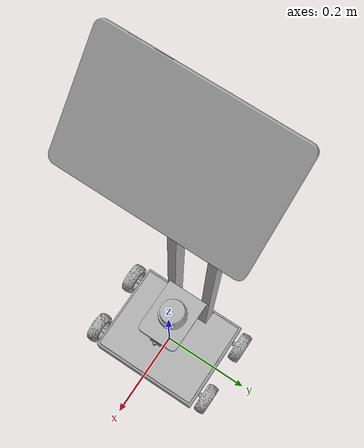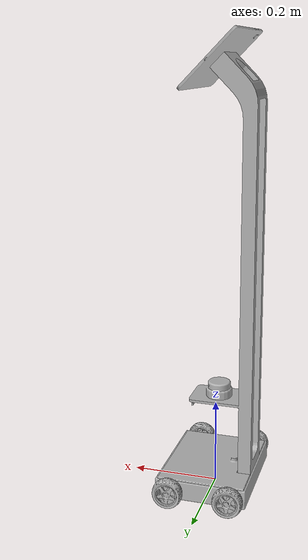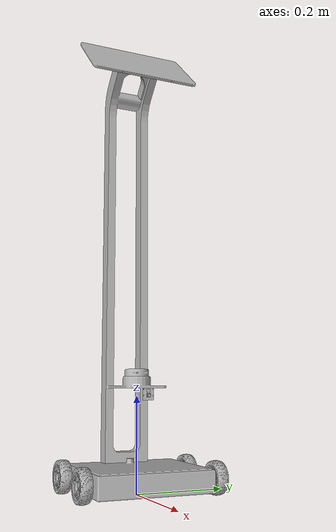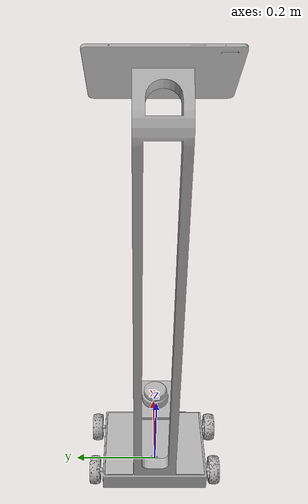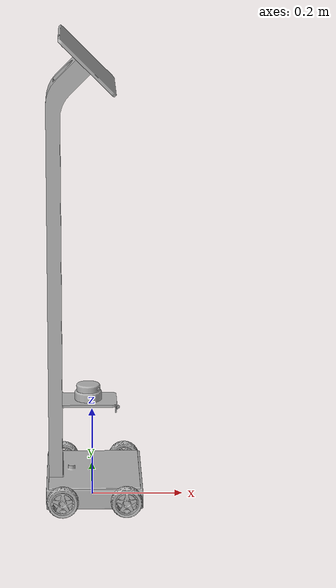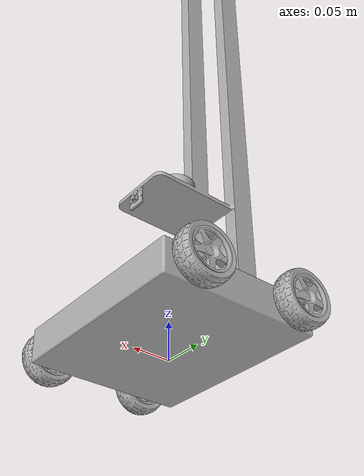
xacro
<?xml version="1.0" ?>
<robot name="guide_bot" xmlns:xacro="http://www.ros.org/wiki/xacro">

<xacro:include filename="$(find guide_bot_description)/urdf/materials.xacro" />
<xacro:include filename="$(find guide_bot_description)/urdf/guide_bot.trans" />
<xacro:include filename="$(find guide_bot_description)/gazebo/guide_bot_materials.gazebo" />
<xacro:include filename="$(find guide_bot_description)/gazebo/guide_bot_physics.gazebo" />
<xacro:include filename="$(find guide_bot_description)/gazebo/guide_bot_plugins.gazebo" />

<link name="base_link">
  <inertial>
    <origin rpy="0 0 0" xyz="-0.005937066306400372 0.0034395129407428695 0.021098711501694623"/>
    <mass value="0.46570766888504633"/>
    <inertia ixx="0.003317" ixy="-0.0" ixz="-0.0" iyy="0.002476" iyz="0.0" izz="0.005632"/>
  </inertial>
  <visual>
    <origin rpy="0 0 0" xyz="0 0 0"/>
    <geometry>
      <mesh filename="package://guide_bot_description/meshes/base_link.stl" scale="0.001 0.001 0.001"/>
    </geometry>
    <material name="silver"/>
  </visual>
  <collision>
    <origin rpy="0 0 0" xyz="0 0 0"/>
    <geometry>
      <mesh filename="package://guide_bot_description/meshes/base_link.stl" scale="0.001 0.001 0.001"/>
    </geometry>
  </collision>
</link>

<link name="cover_plate_1">
  <inertial>
    <origin rpy="0 0 0" xyz="-0.09421412284501307 -6.63900912283499e-06 0.0025561663991068156"/>
    <mass value="0.2383145201325492"/>
    <inertia ixx="0.001202" ixy="-0.0" ixz="1e-06" iyy="0.000717" iyz="-0.0" izz="0.001918"/>
  </inertial>
  <visual>
    <origin rpy="0 0 0" xyz="-0.094063 -0.003441 -0.052131"/>
    <geometry>
      <mesh filename="package://guide_bot_description/meshes/cover_plate_1.stl" scale="0.001 0.001 0.001"/>
    </geometry>
    <material name="silver"/>
  </visual>
  <collision>
    <origin rpy="0 0 0" xyz="-0.094063 -0.003441 -0.052131"/>
    <geometry>
      <mesh filename="package://guide_bot_description/meshes/cover_plate_1.stl" scale="0.001 0.001 0.001"/>
    </geometry>
  </collision>
</link>

<link name="lipo_battery_1">
  <inertial>
    <origin rpy="0 0 0" xyz="-0.00447273732045309 0.016989355078167748 0.01002443884798144"/>
    <mass value="0.39709699990615055"/>
    <inertia ixx="5.6e-05" ixy="-1e-06" ixz="1e-06" iyy="0.000186" iyz="0.0" izz="0.000216"/>
  </inertial>
  <visual>
    <origin rpy="0 0 0" xyz="0.005937 0.114059 -0.014631"/>
    <geometry>
      <mesh filename="package://guide_bot_description/meshes/lipo_battery_1.stl" scale="0.001 0.001 0.001"/>
    </geometry>
    <material name="silver"/>
  </visual>
  <collision>
    <origin rpy="0 0 0" xyz="0.005937 0.114059 -0.014631"/>
    <geometry>
      <mesh filename="package://guide_bot_description/meshes/lipo_battery_1.stl" scale="0.001 0.001 0.001"/>
    </geometry>
  </collision>
</link>

<link name="holding_stand_1">
  <inertial>
    <origin rpy="0 0 0" xyz="0.02419137432661947 0.0001027325370686347 0.47241104463566186"/>
    <mass value="3.923957033322242"/>
    <inertia ixx="0.402087" ixy="-8e-06" ixz="-0.004529" iyy="0.399383" iyz="-0.000181" izz="0.008279"/>
  </inertial>
  <visual>
    <origin rpy="0 0 0" xyz="0.103437 -0.003441 -0.014631"/>
    <geometry>
      <mesh filename="package://guide_bot_description/meshes/holding_stand_1.stl" scale="0.001 0.001 0.001"/>
    </geometry>
    <material name="silver"/>
  </visual>
  <collision>
    <origin rpy="0 0 0" xyz="0.103437 -0.003441 -0.014631"/>
    <geometry>
      <mesh filename="package://guide_bot_description/meshes/holding_stand_1.stl" scale="0.001 0.001 0.001"/>
    </geometry>
  </collision>
</link>

<link name="raspberry_pi_1">
  <inertial>
    <origin rpy="0 0 0" xyz="0.010902406213332735 -0.03269478613543553 -0.005392278358681248"/>
    <mass value="0.13472167579144437"/>
    <inertia ixx="4.1e-05" ixy="-0.0" ixz="-9e-06" iyy="8.3e-05" iyz="0.0" izz="0.000118"/>
  </inertial>
  <visual>
    <origin rpy="0 0 0" xyz="0.011874 -0.126882 -0.026762"/>
    <geometry>
      <mesh filename="package://guide_bot_description/meshes/raspberry_pi_1.stl" scale="0.001 0.001 0.001"/>
    </geometry>
    <material name="silver"/>
  </visual>
  <collision>
    <origin rpy="0 0 0" xyz="0.011874 -0.126882 -0.026762"/>
    <geometry>
      <mesh filename="package://guide_bot_description/meshes/raspberry_pi_1.stl" scale="0.001 0.001 0.001"/>
    </geometry>
  </collision>
</link>

<link name="tab_s7_1">
  <inertial>
    <origin rpy="0 0 0" xyz="0.0021302691418308047 -0.00024381041894267624 0.0023142964848297254"/>
    <mass value="2.0707218758033084"/>
    <inertia ixx="0.013422" ixy="-1.9e-05" ixz="0.002347" iyy="0.004708" iyz="1.7e-05" izz="0.013424"/>
  </inertial>
  <visual>
    <origin rpy="0 0 0" xyz="0.020226 -0.003441 -0.970342"/>
    <geometry>
      <mesh filename="package://guide_bot_description/meshes/tab_s7_1.stl" scale="0.001 0.001 0.001"/>
    </geometry>
    <material name="silver"/>
  </visual>
  <collision>
    <origin rpy="0 0 0" xyz="0.020226 -0.003441 -0.970342"/>
    <geometry>
      <mesh filename="package://guide_bot_description/meshes/tab_s7_1.stl" scale="0.001 0.001 0.001"/>
    </geometry>
  </collision>
</link>

<link name="heavy_weight_1">
  <inertial>
    <origin rpy="0 0 0" xyz="0.07999993369359962 2.2222967556006362e-07 0.012308463660548228"/>
    <mass value="1.7215539604145098"/>
    <inertia ixx="0.000532" ixy="0.0" ixz="0.0" iyy="0.00376" iyz="0.0" izz="0.004117"/>
  </inertial>
  <visual>
    <origin rpy="0 0 0" xyz="0.075937 -0.003441 -0.014631"/>
    <geometry>
      <mesh filename="package://guide_bot_description/meshes/heavy_weight_1.stl" scale="0.001 0.001 0.001"/>
    </geometry>
    <material name="silver"/>
  </visual>
  <collision>
    <origin rpy="0 0 0" xyz="0.075937 -0.003441 -0.014631"/>
    <geometry>
      <mesh filename="package://guide_bot_description/meshes/heavy_weight_1.stl" scale="0.001 0.001 0.001"/>
    </geometry>
  </collision>
</link>

<link name="lidar_1">
  <inertial>
    <origin rpy="0 0 0" xyz="-0.00018796116343106073 -1.9621343767296795e-07 0.007419330060174811"/>
    <mass value="0.041129328341000124"/>
    <inertia ixx="8e-06" ixy="0.0" ixz="-0.0" iyy="8e-06" iyz="-0.0" izz="1.4e-05"/>
  </inertial>
  <visual>
    <origin rpy="0 0 0" xyz="0.018437 -0.003444 -0.241402"/>
    <geometry>
      <mesh filename="package://guide_bot_description/meshes/lidar_1.stl" scale="0.001 0.001 0.001"/>
    </geometry>
    <material name="silver"/>
  </visual>
  <collision>
    <origin rpy="0 0 0" xyz="0.018437 -0.003444 -0.241402"/>
    <geometry>
      <mesh filename="package://guide_bot_description/meshes/lidar_1.stl" scale="0.001 0.001 0.001"/>
    </geometry>
  </collision>
</link>

<link name="rubber_F_right_1">
  <inertial>
    <origin rpy="0 0 0" xyz="-0.06318581236425588 0.046932451041852674 0.14915890017988248"/>
    <mass value="0.009429812150314163"/>
    <inertia ixx="5e-06" ixy="-0.0" ixz="0.0" iyy="9e-06" iyz="-0.0" izz="5e-06"/>
  </inertial>
  <visual>
    <origin rpy="0 0 0" xyz="-0.126372 0.18809 0.114728"/>
    <geometry>
      <mesh filename="package://guide_bot_description/meshes/rubber_F_right_1.stl" scale="0.001 0.001 0.001"/>
    </geometry>
    <material name="silver"/>
  </visual>
  <collision>
    <origin rpy="0 0 0" xyz="-0.126372 0.18809 0.114728"/>
    <geometry>
      <mesh filename="package://guide_bot_description/meshes/rubber_F_right_1.stl" scale="0.001 0.001 0.001"/>
    </geometry>
  </collision>
</link>

<link name="motor_F_right_1">
  <inertial>
    <origin rpy="0 0 0" xyz="2.7006941229340553e-05 0.01663707703714988 0.0005171871725601143"/>
    <mass value="0.020522858123399677"/>
    <inertia ixx="2e-06" ixy="0.0" ixz="-0.0" iyy="0.0" iyz="-0.0" izz="2e-06"/>
  </inertial>
  <visual>
    <origin rpy="0 0 0" xyz="-0.063186 0.116559 -0.034631"/>
    <geometry>
      <mesh filename="package://guide_bot_description/meshes/motor_F_right_1.stl" scale="0.001 0.001 0.001"/>
    </geometry>
    <material name="silver"/>
  </visual>
  <collision>
    <origin rpy="0 0 0" xyz="-0.063186 0.116559 -0.034631"/>
    <geometry>
      <mesh filename="package://guide_bot_description/meshes/motor_F_right_1.stl" scale="0.001 0.001 0.001"/>
    </geometry>
  </collision>
</link>

<link name="rim_F_right_1">
  <inertial>
    <origin rpy="0 0 0" xyz="-0.358365850780965 -0.22639751386308177 -0.028274136735914036"/>
    <mass value="0.014867393604834456"/>
    <inertia ixx="4e-06" ixy="0.0" ixz="0.0" iyy="6e-06" iyz="0.0" izz="4e-06"/>
  </inertial>
  <visual>
    <origin rpy="0 0 0" xyz="-0.421552 -0.084046 -0.062705"/>
    <geometry>
      <mesh filename="package://guide_bot_description/meshes/rim_F_right_1.stl" scale="0.001 0.001 0.001"/>
    </geometry>
    <material name="silver"/>
  </visual>
  <collision>
    <origin rpy="0 0 0" xyz="-0.421552 -0.084046 -0.062705"/>
    <geometry>
      <mesh filename="package://guide_bot_description/meshes/rim_F_right_1.stl" scale="0.001 0.001 0.001"/>
    </geometry>
  </collision>
</link>

<link name="motor_F_left_1">
  <inertial>
    <origin rpy="0 0 0" xyz="2.7006633002146785e-05 -0.016636639859148927 0.0005171885963332762"/>
    <mass value="0.02052285191762625"/>
    <inertia ixx="2e-06" ixy="-0.0" ixz="-0.0" iyy="0.0" iyz="0.0" izz="2e-06"/>
  </inertial>
  <visual>
    <origin rpy="0 0 0" xyz="-0.063186 -0.123441 -0.034631"/>
    <geometry>
      <mesh filename="package://guide_bot_description/meshes/motor_F_left_1.stl" scale="0.001 0.001 0.001"/>
    </geometry>
    <material name="silver"/>
  </visual>
  <collision>
    <origin rpy="0 0 0" xyz="-0.063186 -0.123441 -0.034631"/>
    <geometry>
      <mesh filename="package://guide_bot_description/meshes/motor_F_left_1.stl" scale="0.001 0.001 0.001"/>
    </geometry>
  </collision>
</link>

<link name="rim_F_left_1">
  <inertial>
    <origin rpy="0 0 0" xyz="-0.09816585078096553 0.2263969583224612 0.04098791865725996"/>
    <mass value="0.014867393604834456"/>
    <inertia ixx="4e-06" ixy="-0.0" ixz="-0.0" iyy="6e-06" iyz="0.0" izz="4e-06"/>
  </inertial>
  <visual>
    <origin rpy="0 0 0" xyz="-0.161352 0.077163 0.006357"/>
    <geometry>
      <mesh filename="package://guide_bot_description/meshes/rim_F_left_1.stl" scale="0.001 0.001 0.001"/>
    </geometry>
    <material name="silver"/>
  </visual>
  <collision>
    <origin rpy="0 0 0" xyz="-0.161352 0.077163 0.006357"/>
    <geometry>
      <mesh filename="package://guide_bot_description/meshes/rim_F_left_1.stl" scale="0.001 0.001 0.001"/>
    </geometry>
  </collision>
</link>

<link name="rubber_F_left_1">
  <inertial>
    <origin rpy="0 0 0" xyz="-0.06318581236425648 -0.04713200658247327 0.15604088174146552"/>
    <mass value="0.009429812150314163"/>
    <inertia ixx="5e-06" ixy="0.0" ixz="-0.0" iyy="9e-06" iyz="-0.0" izz="5e-06"/>
  </inertial>
  <visual>
    <origin rpy="0 0 0" xyz="-0.126372 -0.195172 0.12141"/>
    <geometry>
      <mesh filename="package://guide_bot_description/meshes/rubber_F_left_1.stl" scale="0.001 0.001 0.001"/>
    </geometry>
    <material name="silver"/>
  </visual>
  <collision>
    <origin rpy="0 0 0" xyz="-0.126372 -0.195172 0.12141"/>
    <geometry>
      <mesh filename="package://guide_bot_description/meshes/rubber_F_left_1.stl" scale="0.001 0.001 0.001"/>
    </geometry>
  </collision>
</link>

<link name="motor_B_right_1">
  <inertial>
    <origin rpy="0 0 0" xyz="-2.7139245802304535e-05 0.01663708431853314 0.0005171885970578216"/>
    <mass value="0.02052285191762625"/>
    <inertia ixx="2e-06" ixy="-0.0" ixz="0.0" iyy="0.0" iyz="-0.0" izz="2e-06"/>
  </inertial>
  <visual>
    <origin rpy="0 0 0" xyz="0.07506 0.116559 -0.034631"/>
    <geometry>
      <mesh filename="package://guide_bot_description/meshes/motor_B_right_1.stl" scale="0.001 0.001 0.001"/>
    </geometry>
    <material name="silver"/>
  </visual>
  <collision>
    <origin rpy="0 0 0" xyz="0.07506 0.116559 -0.034631"/>
    <geometry>
      <mesh filename="package://guide_bot_description/meshes/motor_B_right_1.stl" scale="0.001 0.001 0.001"/>
    </geometry>
  </collision>
</link>

<link name="rim_B_right_1">
  <inertial>
    <origin rpy="0 0 0" xyz="0.35836569152207653 -0.08815051386308217 0.04058786326408601"/>
    <mass value="0.014867393604834456"/>
    <inertia ixx="4e-06" ixy="0.0" ixz="0.0" iyy="6e-06" iyz="0.0" izz="4e-06"/>
  </inertial>
  <visual>
    <origin rpy="0 0 0" xyz="0.433426 0.054201 0.006157"/>
    <geometry>
      <mesh filename="package://guide_bot_description/meshes/rim_B_right_1.stl" scale="0.001 0.001 0.001"/>
    </geometry>
    <material name="silver"/>
  </visual>
  <collision>
    <origin rpy="0 0 0" xyz="0.433426 0.054201 0.006157"/>
    <geometry>
      <mesh filename="package://guide_bot_description/meshes/rim_B_right_1.stl" scale="0.001 0.001 0.001"/>
    </geometry>
  </collision>
</link>

<link name="rubber_B_right_1">
  <inertial>
    <origin rpy="0 0 0" xyz="0.07506072993878576 0.04693245104185215 0.14915890017988256"/>
    <mass value="0.009429812150314163"/>
    <inertia ixx="5e-06" ixy="-0.0" ixz="0.0" iyy="9e-06" iyz="-0.0" izz="5e-06"/>
  </inertial>
  <visual>
    <origin rpy="0 0 0" xyz="0.150121 0.18809 0.114728"/>
    <geometry>
      <mesh filename="package://guide_bot_description/meshes/rubber_B_right_1.stl" scale="0.001 0.001 0.001"/>
    </geometry>
    <material name="silver"/>
  </visual>
  <collision>
    <origin rpy="0 0 0" xyz="0.150121 0.18809 0.114728"/>
    <geometry>
      <mesh filename="package://guide_bot_description/meshes/rubber_B_right_1.stl" scale="0.001 0.001 0.001"/>
    </geometry>
  </collision>
</link>

<link name="motor_B_left_1">
  <inertial>
    <origin rpy="0 0 0" xyz="-2.7139554029234625e-05 -0.01663663257776557 0.0005171871718351664"/>
    <mass value="0.020522858123399677"/>
    <inertia ixx="2e-06" ixy="0.0" ixz="0.0" iyy="0.0" iyz="0.0" izz="2e-06"/>
  </inertial>
  <visual>
    <origin rpy="0 0 0" xyz="0.07506 -0.123441 -0.034631"/>
    <geometry>
      <mesh filename="package://guide_bot_description/meshes/motor_B_left_1.stl" scale="0.001 0.001 0.001"/>
    </geometry>
    <material name="silver"/>
  </visual>
  <collision>
    <origin rpy="0 0 0" xyz="0.07506 -0.123441 -0.034631"/>
    <geometry>
      <mesh filename="package://guide_bot_description/meshes/motor_B_left_1.stl" scale="0.001 0.001 0.001"/>
    </geometry>
  </collision>
</link>

<link name="rim_B_left_1">
  <inertial>
    <origin rpy="0 0 0" xyz="0.09816569152207556 0.08815095832246037 -0.028274081342740266"/>
    <mass value="0.014867393604834456"/>
    <inertia ixx="4e-06" ixy="-0.0" ixz="-0.0" iyy="6e-06" iyz="0.0" izz="4e-06"/>
  </inertial>
  <visual>
    <origin rpy="0 0 0" xyz="0.173226 -0.061083 -0.062705"/>
    <geometry>
      <mesh filename="package://guide_bot_description/meshes/rim_B_left_1.stl" scale="0.001 0.001 0.001"/>
    </geometry>
    <material name="silver"/>
  </visual>
  <collision>
    <origin rpy="0 0 0" xyz="0.173226 -0.061083 -0.062705"/>
    <geometry>
      <mesh filename="package://guide_bot_description/meshes/rim_B_left_1.stl" scale="0.001 0.001 0.001"/>
    </geometry>
  </collision>
</link>

<link name="rubber_B_left_1">
  <inertial>
    <origin rpy="0 0 0" xyz="0.07506072993878435 -0.046932006582474206 0.15604088174146527"/>
    <mass value="0.009429812150314163"/>
    <inertia ixx="5e-06" ixy="0.0" ixz="-0.0" iyy="9e-06" iyz="-0.0" izz="5e-06"/>
  </inertial>
  <visual>
    <origin rpy="0 0 0" xyz="0.150121 -0.194972 0.12161"/>
    <geometry>
      <mesh filename="package://guide_bot_description/meshes/rubber_B_left_1.stl" scale="0.001 0.001 0.001"/>
    </geometry>
    <material name="silver"/>
  </visual>
  <collision>
    <origin rpy="0 0 0" xyz="0.150121 -0.194972 0.12161"/>
    <geometry>
      <mesh filename="package://guide_bot_description/meshes/rubber_B_left_1.stl" scale="0.001 0.001 0.001"/>
    </geometry>
  </collision>
</link>

<link name="cam_plate_1">
  <inertial>
    <origin rpy="0 0 0" xyz="-0.0005523849230431727 2.2912404553684755e-06 -0.015110952702308833"/>
    <mass value="0.0014651005047021139"/>
    <inertia ixx="0.0" ixy="-0.0" ixz="-0.0" iyy="0.0" iyz="-0.0" izz="0.0"/>
  </inertial>
  <visual>
    <origin rpy="0 0 0" xyz="-0.044063 -0.003444 -0.215831"/>
    <geometry>
      <mesh filename="package://guide_bot_description/meshes/cam_plate_1.stl" scale="0.001 0.001 0.001"/>
    </geometry>
    <material name="silver"/>
  </visual>
  <collision>
    <origin rpy="0 0 0" xyz="-0.044063 -0.003444 -0.215831"/>
    <geometry>
      <mesh filename="package://guide_bot_description/meshes/cam_plate_1.stl" scale="0.001 0.001 0.001"/>
    </geometry>
  </collision>
</link>

<link name="OVA5647_Standard__1__1">
  <inertial>
    <origin rpy="0 0 0" xyz="0.009766426353858618 0.04785230276157357 -0.0014684748846907625"/>
    <mass value="0.0001749661004481696"/>
    <inertia ixx="0.0" ixy="0.0" ixz="0.0" iyy="0.0" iyz="-0.0" izz="0.0"/>
  </inertial>
  <visual>
    <origin rpy="0 0 0" xyz="-0.034963 0.044556 -0.203231"/>
    <geometry>
      <mesh filename="package://guide_bot_description/meshes/OVA5647_Standard__1__1.stl" scale="0.001 0.001 0.001"/>
    </geometry>
    <material name="silver"/>
  </visual>
  <collision>
    <origin rpy="0 0 0" xyz="-0.034963 0.044556 -0.203231"/>
    <geometry>
      <mesh filename="package://guide_bot_description/meshes/OVA5647_Standard__1__1.stl" scale="0.001 0.001 0.001"/>
    </geometry>
  </collision>
</link>

<link name="OVA5647_Housing_Standard__1__1">
  <inertial>
    <origin rpy="0 0 0" xyz="-0.0013138816491958666 0.045373297206069196 -0.20165616408900733"/>
    <mass value="0.0009036348611487623"/>
    <inertia ixx="0.0" ixy="0.0" ixz="0.0" iyy="0.0" iyz="0.0" izz="0.0"/>
  </inertial>
  <visual>
    <origin rpy="0 0 0" xyz="-0.048157 0.041929 -0.403487"/>
    <geometry>
      <mesh filename="package://guide_bot_description/meshes/OVA5647_Housing_Standard__1__1.stl" scale="0.001 0.001 0.001"/>
    </geometry>
    <material name="silver"/>
  </visual>
  <collision>
    <origin rpy="0 0 0" xyz="-0.048157 0.041929 -0.403487"/>
    <geometry>
      <mesh filename="package://guide_bot_description/meshes/OVA5647_Housing_Standard__1__1.stl" scale="0.001 0.001 0.001"/>
    </geometry>
  </collision>
</link>

<link name="OVA5647_Lens_FOV__1__1">
  <inertial>
    <origin rpy="0 0 0" xyz="0.0008013505379504057 0.04835329720606917 -0.20183116408879848"/>
    <mass value="0.0004846085617861289"/>
    <inertia ixx="0.0" ixy="0.0" ixz="-0.0" iyy="0.0" iyz="-0.0" izz="0.0"/>
  </inertial>
  <visual>
    <origin rpy="0 0 0" xyz="-0.048247 0.044909 -0.403662"/>
    <geometry>
      <mesh filename="package://guide_bot_description/meshes/OVA5647_Lens_FOV__1__1.stl" scale="0.001 0.001 0.001"/>
    </geometry>
    <material name="silver"/>
  </visual>
  <collision>
    <origin rpy="0 0 0" xyz="-0.048247 0.044909 -0.403662"/>
    <geometry>
      <mesh filename="package://guide_bot_description/meshes/OVA5647_Lens_FOV__1__1.stl" scale="0.001 0.001 0.001"/>
    </geometry>
  </collision>
</link>

<link name="OVA5647_Pigtail_Standard__1__1">
  <inertial>
    <origin rpy="0 0 0" xyz="0.010248305172290494 0.04800029720609361 -0.0036192865360158144"/>
    <mass value="0.00033280958878601315"/>
    <inertia ixx="0.0" ixy="-0.0" ixz="-0.0" iyy="0.0" iyz="0.0" izz="0.0"/>
  </inertial>
  <visual>
    <origin rpy="0 0 0" xyz="-0.034963 0.044556 -0.215231"/>
    <geometry>
      <mesh filename="package://guide_bot_description/meshes/OVA5647_Pigtail_Standard__1__1.stl" scale="0.001 0.001 0.001"/>
    </geometry>
    <material name="silver"/>
  </visual>
  <collision>
    <origin rpy="0 0 0" xyz="-0.034963 0.044556 -0.215231"/>
    <geometry>
      <mesh filename="package://guide_bot_description/meshes/OVA5647_Pigtail_Standard__1__1.stl" scale="0.001 0.001 0.001"/>
    </geometry>
  </collision>
</link>

<joint name="plate_joint" type="revolute">
  <origin rpy="0 0 0" xyz="0.094063 0.003441 0.052131"/>
  <parent link="base_link"/>
  <child link="cover_plate_1"/>
  <axis xyz="0.0 -1.0 0.0"/>
  <limit effort="100" lower="-1.047198" upper="0.0" velocity="100"/>
</joint>

<joint name="Rigid15" type="fixed">
  <origin rpy="0 0 0" xyz="-0.005937 -0.114059 0.014631"/>
  <parent link="base_link"/>
  <child link="lipo_battery_1"/>
</joint>

<joint name="Rigid16" type="fixed">
  <origin rpy="0 0 0" xyz="-0.103437 0.003441 0.014631"/>
  <parent link="base_link"/>
  <child link="holding_stand_1"/>
</joint>

<joint name="Rigid22" type="fixed">
  <origin rpy="0 0 0" xyz="-0.011874 0.126882 0.026762"/>
  <parent link="base_link"/>
  <child link="raspberry_pi_1"/>
</joint>

<joint name="Rigid25" type="fixed">
  <origin rpy="0 0 0" xyz="0.083211 0.0 0.955711"/>
  <parent link="holding_stand_1"/>
  <child link="tab_s7_1"/>
</joint>

<joint name="Rigid26" type="fixed">
  <origin rpy="0 0 0" xyz="0.0275 0.0 0.0"/>
  <parent link="holding_stand_1"/>
  <child link="heavy_weight_1"/>
</joint>

<joint name="lidar_joint" type="continuous">
  <origin rpy="0 0 0" xyz="0.085 3e-06 0.226771"/>
  <parent link="holding_stand_1"/>
  <child link="lidar_1"/>
  <axis xyz="-0.0 0.0 1.0"/>
</joint>

<joint name="Rigid33" type="fixed">
  <origin rpy="0 0 0" xyz="-0.29518 -0.272136 -0.177433"/>
  <parent link="rim_F_right_1"/>
  <child link="rubber_F_right_1"/>
</joint>

<joint name="Rigid34" type="fixed">
  <origin rpy="0 0 0" xyz="0.063186 -0.116559 0.034631"/>
  <parent link="base_link"/>
  <child link="motor_F_right_1"/>
</joint>

<joint name="forward_right" type="continuous">
  <origin rpy="0 0 0" xyz="0.358366 0.200605 0.028074"/>
  <parent link="motor_F_right_1"/>
  <child link="rim_F_right_1"/>
  <axis xyz="0.0 -1.0 0.0"/>
</joint>

<joint name="Rigid36" type="fixed">
  <origin rpy="0 0 0" xyz="0.063186 0.123441 0.034631"/>
  <parent link="base_link"/>
  <child link="motor_F_left_1"/>
</joint>

<joint name="forward_left" type="continuous">
  <origin rpy="0 0 0" xyz="0.098166 -0.200604 -0.040988"/>
  <parent link="motor_F_left_1"/>
  <child link="rim_F_left_1"/>
  <axis xyz="0.0 1.0 -0.0"/>
</joint>

<joint name="Rigid38" type="fixed">
  <origin rpy="0 0 0" xyz="-0.03498 0.272335 -0.115053"/>
  <parent link="rim_F_left_1"/>
  <child link="rubber_F_left_1"/>
</joint>

<joint name="Rigid39" type="fixed">
  <origin rpy="0 0 0" xyz="-0.07506 -0.116559 0.034631"/>
  <parent link="base_link"/>
  <child link="motor_B_right_1"/>
</joint>

<joint name="backward_right" type="continuous">
  <origin rpy="0 0 0" xyz="-0.358366 0.062358 -0.040788"/>
  <parent link="motor_B_right_1"/>
  <child link="rim_B_right_1"/>
  <axis xyz="-0.0 -1.0 0.0"/>
</joint>

<joint name="Rigid41" type="fixed">
  <origin rpy="0 0 0" xyz="0.283305 -0.133889 -0.108571"/>
  <parent link="rim_B_right_1"/>
  <child link="rubber_B_right_1"/>
</joint>

<joint name="Rigid42" type="fixed">
  <origin rpy="0 0 0" xyz="-0.07506 0.123441 0.034631"/>
  <parent link="base_link"/>
  <child link="motor_B_left_1"/>
</joint>

<joint name="backward_left" type="continuous">
  <origin rpy="0 0 0" xyz="-0.098166 -0.062358 0.028074"/>
  <parent link="motor_B_left_1"/>
  <child link="rim_B_left_1"/>
  <axis xyz="-0.0 1.0 -0.0"/>
</joint>

<joint name="Rigid44" type="fixed">
  <origin rpy="0 0 0" xyz="0.023105 0.133889 -0.184315"/>
  <parent link="rim_B_left_1"/>
  <child link="rubber_B_left_1"/>
</joint>

<joint name="Rigid45" type="fixed">
  <origin rpy="0 0 0" xyz="0.1475 3e-06 0.2012"/>
  <parent link="holding_stand_1"/>
  <child link="cam_plate_1"/>
</joint>

<joint name="Rigid49" type="fixed">
  <origin rpy="0 0 0" xyz="-0.0091 -0.048 -0.0126"/>
  <parent link="cam_plate_1"/>
  <child link="OVA5647_Standard__1__1"/>
</joint>

<joint name="Rigid50" type="fixed">
  <origin rpy="0 0 0" xyz="0.013194 0.002627 0.200256"/>
  <parent link="OVA5647_Standard__1__1"/>
  <child link="OVA5647_Housing_Standard__1__1"/>
</joint>

<joint name="cam_joint" type="fixed">
  <origin rpy="0 0 0" xyz="9e-05 -0.00298 0.000175"/>
  <parent link="OVA5647_Housing_Standard__1__1"/>
  <child link="OVA5647_Lens_FOV__1__1"/>
</joint>

<joint name="Rigid52" type="fixed">
  <origin rpy="0 0 0" xyz="-0.0091 -0.048 -0.0006"/>
  <parent link="cam_plate_1"/>
  <child link="OVA5647_Pigtail_Standard__1__1"/>
</joint>

</robot>

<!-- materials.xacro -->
<robot name="guide_bot" xmlns:xacro="http://www.ros.org/wiki/xacro" >

<material name="silver">
  <color rgba="0.700 0.700 0.700 1.000"/>
</material>

</robot>

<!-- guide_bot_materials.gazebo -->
<robot name="guide_bot" xmlns:xacro="http://www.ros.org/wiki/xacro" >

<xacro:property name="body_color" value="Gazebo/Silver" />
<xacro:property name="rubber_color" value="Gazebo/Black" />
<xacro:property name="rim_color" value="Gazebo/Yellow" />
<xacro:property name="tab_color" value="Gazebo/White" />
<xacro:property name="plate_color" value="Gazebo/DarkGrey" />
<xacro:property name="lipo_color" value="Gazebo/Red" />
<xacro:property name="camplate_color" value="Gazebo/Green" />

<gazebo reference="base_link">
  <material>${body_color}</material>
</gazebo>

<gazebo reference="cover_plate_1">
  <material>${plate_color}</material>
</gazebo>

<gazebo reference="lipo_battery_1">
  <material>${lipo_color}</material>
</gazebo>

<gazebo reference="holding_stand_1">
  <material>${body_color}</material>
</gazebo>

<gazebo reference="raspberry_pi_1">
  <material>${body_color}</material>
</gazebo>

<gazebo reference="tab_s7_1">
  <material>${tab_color}</material>
</gazebo>

<gazebo reference="heavy_weight_1">
  <material>${body_color}</material>
</gazebo>

<gazebo reference="lidar_1">
  <material>${body_color}</material>
</gazebo>

<gazebo reference="rubber_F_right_1">
  <material>${rubber_color}</material>
</gazebo>

<gazebo reference="motor_F_right_1">
  <material>${body_color}</material>
</gazebo>

<gazebo reference="rim_F_right_1">
  <material>${rim_color}</material>
</gazebo>

<gazebo reference="motor_F_left_1">
  <material>${body_color}</material>
</gazebo>

<gazebo reference="rim_F_left_1">
  <material>${rim_color}</material>
</gazebo>

<gazebo reference="rubber_F_left_1">
  <material>${rubber_color}</material>
</gazebo>

<gazebo reference="motor_B_right_1">
  <material>${body_color}</material>
</gazebo>

<gazebo reference="rim_B_right_1">
  <material>${rim_color}</material>
</gazebo>

<gazebo reference="rubber_B_right_1">
  <material>${rubber_color}</material>
</gazebo>

<gazebo reference="motor_B_left_1">
  <material>${body_color}</material>
</gazebo>

<gazebo reference="rim_B_left_1">
  <material>${rim_color}</material>
</gazebo>

<gazebo reference="rubber_B_left_1">
  <material>${rubber_color}</material>
</gazebo>

<gazebo reference="cam_plate_1">
  <material>${camplate_color}</material>
</gazebo>

<gazebo reference="OVA5647_Standard__1__1">
  <material>${body_color}</material>
</gazebo>

<gazebo reference="OVA5647_Housing_Standard__1__1">
  <material>${body_color}</material>
</gazebo>

<gazebo reference="OVA5647_Lens_FOV__1__1">
  <material>${body_color}</material>
</gazebo>

<gazebo reference="OVA5647_Pigtail_Standard__1__1">
  <material>${body_color}</material>
</gazebo>

</robot>
